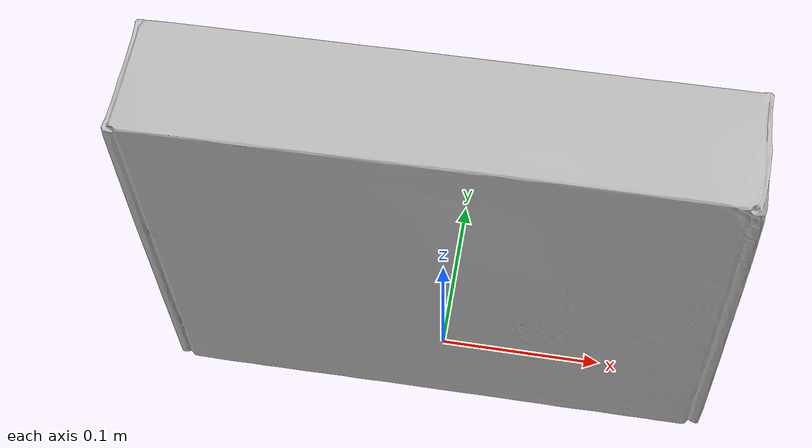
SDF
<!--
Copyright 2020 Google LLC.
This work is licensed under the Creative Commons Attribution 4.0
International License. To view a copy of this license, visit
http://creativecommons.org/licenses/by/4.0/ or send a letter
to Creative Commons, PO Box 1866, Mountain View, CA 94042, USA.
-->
<?xml version="1.0" ?>
<sdf version="1.6">
  <model name="Asus_Z97AR_LGA_1150_Intel_ATX_Motherboard">
    <link name="link_0">
      <visual name="visual">
        <geometry>
          <mesh>
            <uri>meshes/model.obj</uri>
          </mesh>
        </geometry>
      </visual>
      <collision name="collision_0">
        <geometry>
          <mesh>
            <uri>meshes/model.obj</uri>
          </mesh>
        </geometry>
      </collision>
    </link>
  </model>
</sdf>
